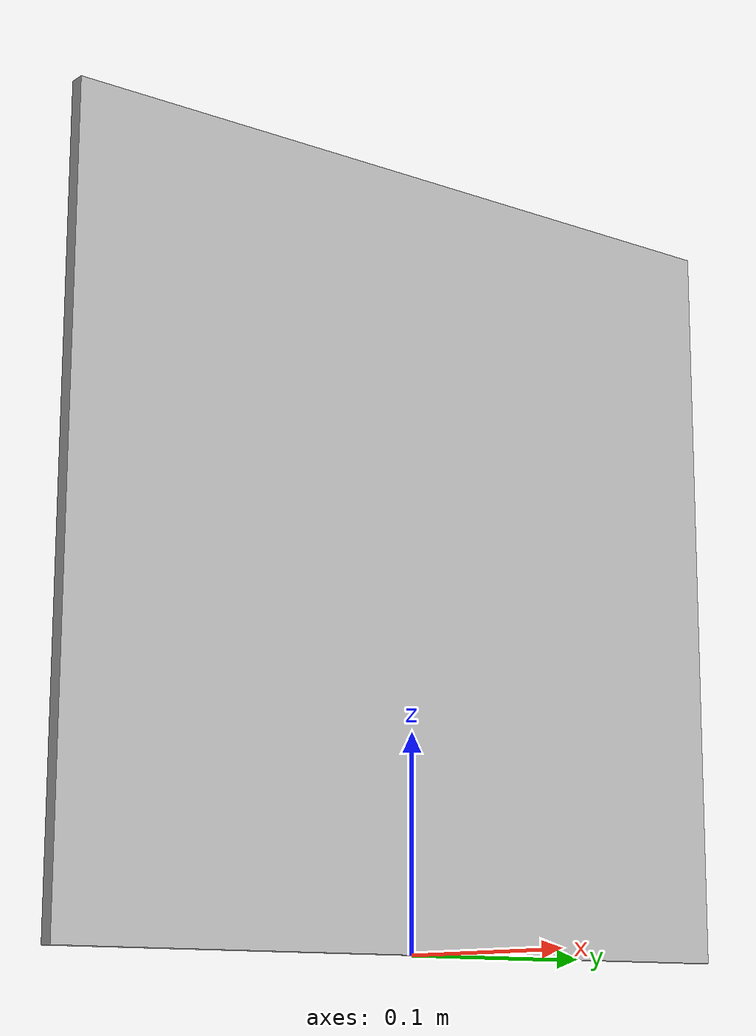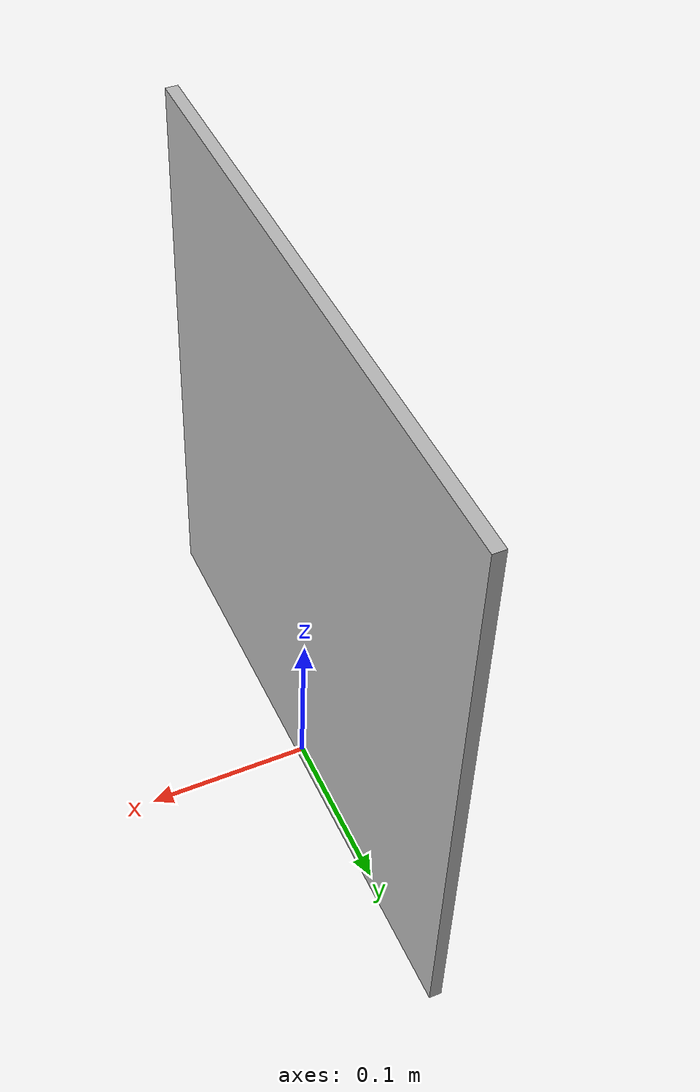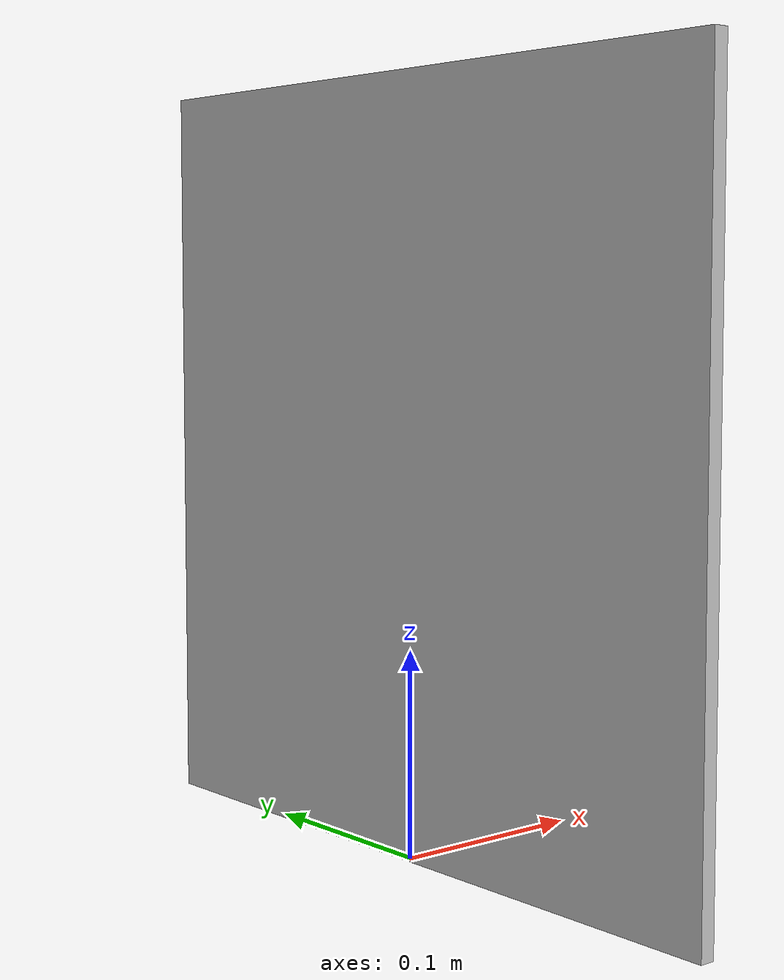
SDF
<?xml version="1.0" ?><sdf version="1.5">
  <model name="Marker">
    <static>true</static>
    <link name="link">
      <visual name="visual">
        <geometry>
          <mesh>
            <uri>model://marker/meshes/Marker.dae</uri>
          <scale>0.738 0.738 0.738</scale></mesh>
        </geometry>
      </visual>
    </link>
  </model>
</sdf>
